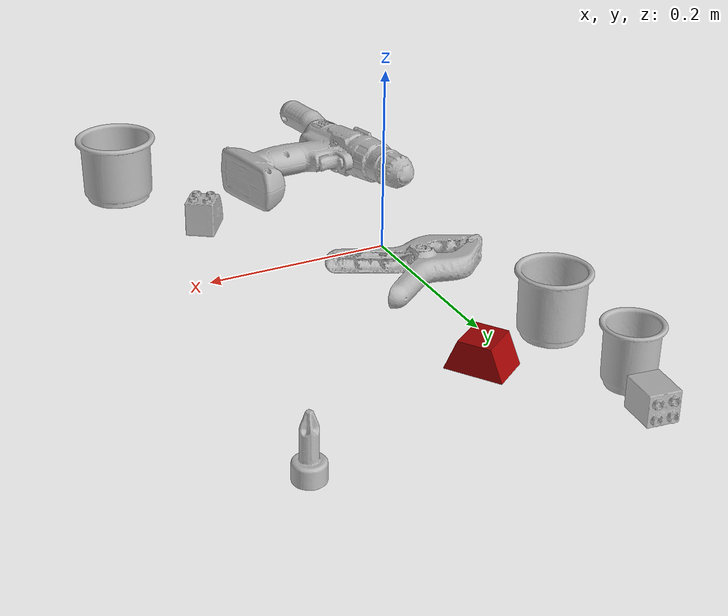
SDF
<sdf version="1.4">
  <world name="default">
    <light name="light1" type="point">
      <pose>0 0 1 0 0 0</pose>
      <diffuse>3 3 3 1</diffuse>
      <specular>3 3 3 1</specular>
    </light>
    <light name="light2" type="point">
      <pose>0 0.5 2 0 0 0</pose>
      <diffuse>1 1 1 1</diffuse>
      <specular>1 1 1 1</specular>
    </light>
    <light name="light3" type="point">
      <pose>0 0.5 2 0 0 0</pose>
      <diffuse>3 3 3 1</diffuse>
      <specular>3 3 3 1</specular>
    </light>
    <scene>
      <ambient>0.7 0.7 0.7</ambient>
    </scene>
    <model name="cup1">
      <link name="link_cup1">
        <collision name="default">
          <geometry>
            <mesh>
              <uri>model://b_cups/collision_meshes/collision.obj</uri>
              <scale>1.0 1.0 1.0</scale>
            </mesh>
          </geometry>
          <surface>
            <friction>
              <ode>
                <mu>0.5</mu>
                <mu2>0.5</mu2>
              </ode>
            </friction>
          <contact>
        <ode>
            <max_vel>0</max_vel>
            <min_depth>0.0001</min_depth>
            <kp>1e8</kp>
        </ode>
    </contact></surface>
        </collision>
        <visual name="default">
          <geometry>
            <mesh>
              <uri>model://b_cups/visual_meshes/visual.dae</uri>
              <scale>1.0 1.0 1.0</scale>
            </mesh>
          </geometry>
        </visual>
        <inertial>
          <mass>0.048613063991069794</mass>
          <pose>0.0005182003951631486 0.0018058597343042493 -0.0013381808530539274 0.11356326710502956 0.03872484102688303 -0.34569225342860055</pose>
          <inertia>
            <ixx>3.1820662e-05</ixx>
            <iyy>3.121653e-05</iyy>
            <izz>2.6776484e-05</izz>
            <ixy>0</ixy>
            <ixz>0</ixz>
            <iyz>0</iyz>
          </inertia>
        </inertial>
      </link>
      <pose>-0.06951382011175156 0.3479994237422943 0.03199630230665207 -0.007656633218990124 -0.003778239702621139 2.42875376815841</pose>
    </model>
    <model name="cup2">
      <link name="link_cup2">
        <collision name="default">
          <geometry>
            <mesh>
              <uri>model://e_cups/collision_meshes/collision.obj</uri>
              <scale>1.0 1.0 1.0</scale>
            </mesh>
          </geometry>
          <surface>
            <friction>
              <ode>
                <mu>0.5</mu>
                <mu2>0.5</mu2>
              </ode>
            </friction>
          <contact>
        <ode>
            <max_vel>0</max_vel>
            <min_depth>0.0001</min_depth>
            <kp>1e8</kp>
        </ode>
    </contact></surface>
        </collision>
        <visual name="default">
          <geometry>
            <mesh>
              <uri>model://e_cups/visual_meshes/visual.dae</uri>
              <scale>1.0 1.0 1.0</scale>
            </mesh>
          </geometry>
        </visual>
        <inertial>
          <mass>0.07592208683490753</mass>
          <pose>0.0011355738388374448 0.002879784908145666 -0.003882972290739417 0.695241209711482 0.0876783799590152 -0.5235234031188288</pose>
          <inertia>
            <ixx>6.6944274e-05</ixx>
            <iyy>6.996636e-05</iyy>
            <izz>6.400647e-05</izz>
            <ixy>0</ixy>
            <ixz>0</ixz>
            <iyz>0</iyz>
          </inertia>
        </inertial>
      </link>
      <pose>-0.05637017637491226 0.24115213751792908 0.03560023754835129 -1.4387301592072477e-05 8.898751436284465e-06 -1.9897032591160537</pose>
    </model>
    <model name="cup3">
      <link name="link_cup3">
        <collision name="default">
          <geometry>
            <mesh>
              <uri>model://h_cups/collision_meshes/collision.obj</uri>
              <scale>1.0 1.0 1.0</scale>
            </mesh>
          </geometry>
          <surface>
            <friction>
              <ode>
                <mu>0.5</mu>
                <mu2>0.5</mu2>
              </ode>
            </friction>
          <contact>
        <ode>
            <max_vel>0</max_vel>
            <min_depth>0.0001</min_depth>
            <kp>1e8</kp>
        </ode>
    </contact></surface>
        </collision>
        <visual name="default">
          <geometry>
            <mesh>
              <uri>model://h_cups/visual_meshes/visual.dae</uri>
              <scale>1.0 1.0 1.0</scale>
            </mesh>
          </geometry>
        </visual>
        <inertial>
          <mass>0.07054857164621353</mass>
          <pose>-2.7030857381760143e-05 0.0002301865170011297 -0.0018405391601845622 -0.024362378998248252 0.0654525662963329 0.12884761756284485</pose>
          <inertia>
            <ixx>9.1110225e-05</ixx>
            <iyy>9.002296e-05</iyy>
            <izz>9.5549614e-05</izz>
            <ixy>0</ixy>
            <ixz>0</ixz>
            <iyz>0</iyz>
          </inertia>
        </inertial>
      </link>
      <pose>0.21777041256427765 -0.25002536177635193 0.037757985293865204 -2.317287818644226e-08 1.783539323011404e-08 -0.7602510004524946</pose>
    </model>
    <model name="toy1">
      <link name="link_toy1">
        <collision name="default">
          <geometry>
            <mesh>
              <uri>model://f_lego_duplo/collision_meshes/collision.obj</uri>
              <scale>1.0 1.0 1.0</scale>
            </mesh>
          </geometry>
          <surface>
            <friction>
              <ode>
                <mu>0.5</mu>
                <mu2>0.5</mu2>
              </ode>
            </friction>
          <contact>
        <ode>
            <max_vel>0</max_vel>
            <min_depth>0.0001</min_depth>
            <kp>1e8</kp>
        </ode>
    </contact></surface>
        </collision>
        <visual name="default">
          <geometry>
            <mesh>
              <uri>model://f_lego_duplo/visual_meshes/visual.dae</uri>
              <scale>1.0 1.0 1.0</scale>
            </mesh>
          </geometry>
        </visual>
        <inertial>
          <mass>0.027637142688035965</mass>
          <pose>2.3694037736277096e-05 0.0001339315203949809 0.0018837873358279467 0.029838580482088747 -0.014425059949813135 -0.6756637855802661</pose>
          <inertia>
            <ixx>5.8398805e-06</ixx>
            <iyy>5.8919077e-06</iyy>
            <izz>5.069264e-06</izz>
            <ixy>0</ixy>
            <ixz>0</ixz>
            <iyz>0</iyz>
          </inertia>
        </inertial>
      </link>
      <pose>-0.057878147810697556 0.3998287320137024 0.016202928498387337 1.661190907513245 1.5707423245443581 3.1228662276661923</pose>
    </model>
    <model name="toy2">
      <link name="link_toy2">
        <collision name="default">
          <geometry>
            <mesh>
              <uri>model://d_toy_airplane/collision_meshes/collision.obj</uri>
              <scale>1.0 1.0 1.0</scale>
            </mesh>
          </geometry>
          <surface>
            <friction>
              <ode>
                <mu>0.5</mu>
                <mu2>0.5</mu2>
              </ode>
            </friction>
          <contact>
        <ode>
            <max_vel>0</max_vel>
            <min_depth>0.0001</min_depth>
            <kp>1e8</kp>
        </ode>
    </contact></surface>
        </collision>
        <visual name="default">
          <geometry>
            <mesh>
              <uri>model://d_toy_airplane/visual_meshes/visual.dae</uri>
              <scale>1.0 1.0 1.0</scale>
            </mesh>
          </geometry>
        </visual>
        <inertial>
          <mass>0.017859498038887978</mass>
          <pose>9.410335042048246e-05 -5.809318827232346e-05 -0.011728094890713692 0.0002667298520076861 0.004679004392369758 0.5194091511239993</pose>
          <inertia>
            <ixx>5.35393e-06</ixx>
            <iyy>5.3579683e-06</iyy>
            <izz>1.6163864e-06</izz>
            <ixy>0</ixy>
            <ixz>0</ixz>
            <iyz>0</iyz>
          </inertia>
        </inertial>
      </link>
      <pose>0.2526010572910309 0.3571745455265045 0.03333885222673416 -1.0533589109800901e-05 -0.00015481483919685545 -2.57760169727177</pose>
    </model>
    <model name="toy3">
      <link name="link_toy3">
        <collision name="default">
          <geometry>
            <mesh>
              <uri>model://prism/collision_meshes/collision.obj</uri>
              <scale>0.5 0.5 0.5</scale>
            </mesh>
          </geometry>
          <surface>
            <friction>
              <ode>
                <mu>0.5</mu>
                <mu2>0.5</mu2>
              </ode>
            </friction>
          <contact>
        <ode>
            <max_vel>0</max_vel>
            <min_depth>0.0001</min_depth>
            <kp>1e8</kp>
        </ode>
    </contact></surface>
        </collision>
        <visual name="default">
          <geometry>
            <mesh>
              <uri>model://prism/visual_meshes/visual.dae</uri>
              <scale>0.5 0.5 0.5</scale>
            </mesh>
          </geometry>
        </visual>
        <inertial>
          <mass>0.04761093109846115</mass>
          <pose>-4.92679828312248e-05 -2.480786349678965e-07 -0.001693455153144896 0.0 0.006559181231804993 0.0</pose>
          <inertia>
            <ixx>1.074207e-05</ixx>
            <iyy>1.2981929e-05</iyy>
            <izz>1.590131e-05</izz>
            <ixy>0</ixy>
            <ixz>0</ixz>
            <iyz>0</iyz>
          </inertia>
        </inertial>
      </link>
      <pose>0.03320010006427765 0.2634895443916321 0.016085002571344376 2.7828331360896995e-08 4.5598203070739615e-09 2.178489308273526</pose>
    </model>
    <model name="toy4">
      <link name="link_toy4">
        <collision name="default">
          <geometry>
            <mesh>
              <uri>model://d_lego_duplo/collision_meshes/collision.obj</uri>
              <scale>1.0 1.0 1.0</scale>
            </mesh>
          </geometry>
          <surface>
            <friction>
              <ode>
                <mu>0.5</mu>
                <mu2>0.5</mu2>
              </ode>
            </friction>
          <contact>
        <ode>
            <max_vel>0</max_vel>
            <min_depth>0.0001</min_depth>
            <kp>1e8</kp>
        </ode>
    </contact></surface>
        </collision>
        <visual name="default">
          <geometry>
            <mesh>
              <uri>model://d_lego_duplo/visual_meshes/visual.dae</uri>
              <scale>1.0 1.0 1.0</scale>
            </mesh>
          </geometry>
        </visual>
        <inertial>
          <mass>0.06000049039721489</mass>
          <pose>0.0028305640444159508 0.0001636611996218562 0.000858980929479003 0.08010949527318252 -0.38355210287845315 0.0010297055105996263</pose>
          <inertia>
            <ixx>1.1615211e-05</ixx>
            <iyy>1.6485134e-05</iyy>
            <izz>1.5897598e-05</izz>
            <ixy>0</ixy>
            <ixz>0</ixz>
            <iyz>0</iyz>
          </inertia>
        </inertial>
      </link>
      <pose>0.15744635462760925 -0.12736445665359497 0.021740011870861053 2.3827679518373924e-07 9.786474312445353e-07 0.9861161324247975</pose>
    </model>
    <model name="hardware1">
      <link name="link_hardware1">
        <collision name="default">
          <geometry>
            <mesh>
              <uri>model://phillips_screwdriver/collision_meshes/collision.obj</uri>
              <scale>1.0 1.0 1.0</scale>
            </mesh>
          </geometry>
          <surface>
            <friction>
              <ode>
                <mu>0.5</mu>
                <mu2>0.5</mu2>
              </ode>
            </friction>
          <contact>
        <ode>
            <max_vel>0</max_vel>
            <min_depth>0.0001</min_depth>
            <kp>1e8</kp>
        </ode>
    </contact></surface>
        </collision>
        <visual name="default">
          <geometry>
            <mesh>
              <uri>model://phillips_screwdriver/visual_meshes/visual.dae</uri>
              <scale>1.0 1.0 1.0</scale>
            </mesh>
          </geometry>
        </visual>
        <inertial>
          <mass>0.11704345047473907</mass>
          <pose>-0.04777182638645172 0.0010362302418798208 -0.0004555549821816385 -0.1571668982332543 0.0058509943133797405 -0.002156735283865719</pose>
          <inertia>
            <ixx>1.3751404e-05</ixx>
            <iyy>0.00017241857</iyy>
            <izz>0.0001725651</izz>
            <ixy>0</ixy>
            <ixz>0</ixz>
            <iyz>0</iyz>
          </inertia>
        </inertial>
      </link>
      <pose>-0.07674667239189148 -0.27981144189834595 0.015410209074616432 0.06535398520764771 0.03754938797476444 1.791603208996439</pose>
    </model>
    <model name="hardware2">
      <link name="link_hardware2">
        <collision name="default">
          <geometry>
            <mesh>
              <uri>model://large_clamp/collision_meshes/collision.obj</uri>
              <scale>1.0 1.0 1.0</scale>
            </mesh>
          </geometry>
          <surface>
            <friction>
              <ode>
                <mu>0.5</mu>
                <mu2>0.5</mu2>
              </ode>
            </friction>
          <contact>
        <ode>
            <max_vel>0</max_vel>
            <min_depth>0.0001</min_depth>
            <kp>1e8</kp>
        </ode>
    </contact></surface>
        </collision>
        <visual name="default">
          <geometry>
            <mesh>
              <uri>model://large_clamp/visual_meshes/visual.dae</uri>
              <scale>1.0 1.0 1.0</scale>
            </mesh>
          </geometry>
        </visual>
        <inertial>
          <mass>0.18953841924667358</mass>
          <pose>0.00636935792863369 0.0003585682134144008 -0.00018398056272417307 -0.002133075536327147 0.009671586607470332 0.026633167384546762</pose>
          <inertia>
            <ixx>0.00016722476</ixx>
            <iyy>0.0003175689</iyy>
            <izz>0.00045940367</izz>
            <ixy>0</ixy>
            <ixz>0</ixz>
            <iyz>0</iyz>
          </inertia>
        </inertial>
      </link>
      <pose>0.0006500137969851494 0.0852452889084816 0.018504517152905464 -0.012236961420877816 0.04692787677956661 -2.9851367745740305</pose>
    </model>
    <model name="hardware3">
      <link name="link_hardware3">
        <collision name="default">
          <geometry>
            <mesh>
              <uri>model://power_drill/collision_meshes/collision.obj</uri>
              <scale>1.0 1.0 1.0</scale>
            </mesh>
          </geometry>
          <surface>
            <friction>
              <ode>
                <mu>0.5</mu>
                <mu2>0.5</mu2>
              </ode>
            </friction>
          <contact>
        <ode>
            <max_vel>0</max_vel>
            <min_depth>0.0001</min_depth>
            <kp>1e8</kp>
        </ode>
    </contact></surface>
        </collision>
        <visual name="default">
          <geometry>
            <mesh>
              <uri>model://power_drill/visual_meshes/visual.dae</uri>
              <scale>1.0 1.0 1.0</scale>
            </mesh>
          </geometry>
        </visual>
        <inertial>
          <mass>0.5207164287567139</mass>
          <pose>-0.014780543744564056 0.014369428157806396 0.0012414171360433102 0.004609162650930739 0.004073022346756156 -0.183626968168983</pose>
          <inertia>
            <ixx>0.0021219437</ixx>
            <iyy>0.00083487434</iyy>
            <izz>0.002802402</izz>
            <ixy>0</ixy>
            <ixz>0</ixz>
            <iyz>0</iyz>
          </inertia>
        </inertial>
      </link>
      <pose>0.0014962274581193924 -0.17232471704483032 0.027172092348337173 -0.026879592249935354 -0.03514422368953862 1.7792088312078989</pose>
    </model>
  <physics type="ode">
      <max_contacts>50</max_contacts>
      <ode>
        <solver>
          <type>quick</type>
          <iters>75</iters>
        </solver>
        <constraints>
          <contact_max_correcting_vel>0</contact_max_correcting_vel>
          <contact_surface_layer>0</contact_surface_layer>
        </constraints>
      </ode>
    </physics></world>
</sdf>
